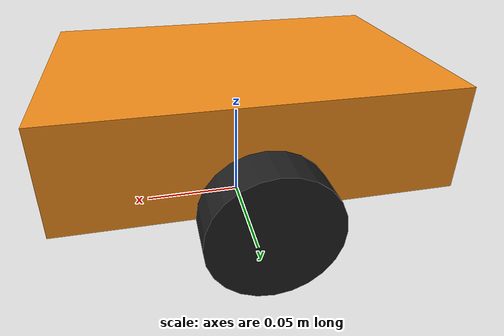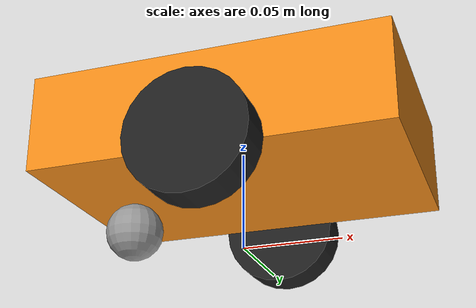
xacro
<?xml version="1.0"?>
<robot name="simple_duckiebot" xmlns:xacro="http://www.ros.org/wiki/xacro">

  <xacro:include filename="$(find duckiebot_description)/urdf/materials.xacro"/>

  <xacro:property name="half_turn" value="1.5707963267948966"/>
  <xacro:property name="chassis_length" value="0.18"/>
  <xacro:property name="chassis_width" value="0.12"/>
  <xacro:property name="chassis_height" value="0.05"/>
  <xacro:property name="chassis_mass" value="1.0"/>
  <xacro:property name="wheel_radius" value="0.03"/>
  <xacro:property name="wheel_width" value="0.02"/>
  <xacro:property name="wheel_mass" value="0.15"/>
  <xacro:property name="wheel_offset_x" value="0.0"/>
  <xacro:property name="wheel_offset_y" value="0.07"/>
  <xacro:property name="caster_radius" value="0.015"/>
  <xacro:property name="caster_mass" value="0.05"/>
  <xacro:property name="caster_offset_x" value="-0.06"/>

  <link name="base_link"/>

  <link name="chassis">
    <inertial>
      <origin xyz="0 0 0"/>
      <mass value="${chassis_mass}"/>
      <inertia ixx="0.002" ixy="0" ixz="0" iyy="0.004" iyz="0" izz="0.005"/>
    </inertial>
    <visual>
      <origin xyz="0 0 ${wheel_radius + chassis_height / 2.0}"/>
      <geometry>
        <box size="${chassis_length} ${chassis_width} ${chassis_height}"/>
      </geometry>
      <material name="orange"/>
    </visual>
    <collision>
      <origin xyz="0 0 ${wheel_radius + chassis_height / 2.0}"/>
      <geometry>
        <box size="${chassis_length} ${chassis_width} ${chassis_height}"/>
      </geometry>
    </collision>
  </link>

  <joint name="base_to_chassis" type="fixed">
    <parent link="base_link"/>
    <child link="chassis"/>
    <origin xyz="0 0 0" rpy="0 0 0"/>
  </joint>

  <link name="left_wheel">
    <inertial>
      <origin xyz="0 0 0"/>
      <mass value="${wheel_mass}"/>
      <inertia ixx="5e-5" ixy="0" ixz="0" iyy="5e-5" iyz="0" izz="8e-5"/>
    </inertial>
    <visual>
      <origin xyz="0 0 0" rpy="${half_turn} 0 0"/>
      <geometry>
        <cylinder radius="${wheel_radius}" length="${wheel_width}"/>
      </geometry>
      <material name="black"/>
    </visual>
    <collision>
      <origin xyz="0 0 0" rpy="${half_turn} 0 0"/>
      <geometry>
        <cylinder radius="${wheel_radius}" length="${wheel_width}"/>
      </geometry>
    </collision>
  </link>

  <joint name="left_wheel_hinge" type="continuous">
    <parent link="chassis"/>
    <child link="left_wheel"/>
    <origin xyz="${wheel_offset_x} ${wheel_offset_y} ${wheel_radius}" rpy="0 0 0"/>
    <axis xyz="0 1 0"/>
  </joint>

  <link name="right_wheel">
    <inertial>
      <origin xyz="0 0 0"/>
      <mass value="${wheel_mass}"/>
      <inertia ixx="5e-5" ixy="0" ixz="0" iyy="5e-5" iyz="0" izz="8e-5"/>
    </inertial>
    <visual>
      <origin xyz="0 0 0" rpy="${half_turn} 0 0"/>
      <geometry>
        <cylinder radius="${wheel_radius}" length="${wheel_width}"/>
      </geometry>
      <material name="black"/>
    </visual>
    <collision>
      <origin xyz="0 0 0" rpy="${half_turn} 0 0"/>
      <geometry>
        <cylinder radius="${wheel_radius}" length="${wheel_width}"/>
      </geometry>
    </collision>
  </link>

  <joint name="right_wheel_hinge" type="continuous">
    <parent link="chassis"/>
    <child link="right_wheel"/>
    <origin xyz="${wheel_offset_x} ${-wheel_offset_y} ${wheel_radius}" rpy="0 0 0"/>
    <axis xyz="0 1 0"/>
  </joint>

  <link name="caster">
    <inertial>
      <origin xyz="0 0 0"/>
      <mass value="${caster_mass}"/>
      <inertia ixx="1e-5" ixy="0" ixz="0" iyy="1e-5" iyz="0" izz="1e-5"/>
    </inertial>
    <visual>
      <origin xyz="0 0 0"/>
      <geometry>
        <sphere radius="${caster_radius}"/>
      </geometry>
      <material name="grey"/>
    </visual>
    <collision>
      <origin xyz="0 0 0"/>
      <geometry>
        <sphere radius="${caster_radius}"/>
      </geometry>
    </collision>
  </link>

  <joint name="caster_joint" type="fixed">
    <parent link="chassis"/>
    <child link="caster"/>
    <origin xyz="${caster_offset_x} 0 ${caster_radius}" rpy="0 0 0"/>
  </joint>

  <gazebo>
    <plugin name="simple_diff_drive" filename="libgazebo_ros_diff_drive.so">
      <update_rate>50</update_rate>
      <left_joint>left_wheel_hinge</left_joint>
      <right_joint>right_wheel_hinge</right_joint>
      <wheel_separation>${2.0 * wheel_offset_y}</wheel_separation>
      <wheel_diameter>${2.0 * wheel_radius}</wheel_diameter>
      <max_wheel_torque>10.0</max_wheel_torque>
      <max_wheel_acceleration>5.0</max_wheel_acceleration>
      <command_topic>cmd_vel</command_topic>
      <odometry_topic>odom</odometry_topic>
      <odometry_frame>odom</odometry_frame>
      <robot_base_frame>base_link</robot_base_frame>
      <publish_odom>true</publish_odom>
      <publish_odom_tf>true</publish_odom_tf>
      <publish_wheel_tf>false</publish_wheel_tf>
    </plugin>
  </gazebo>

  <gazebo reference="chassis">
    <material>Gazebo/Orange</material>
  </gazebo>

  <gazebo reference="left_wheel">
    <mu1>1.0</mu1>
    <mu2>1.0</mu2>
    <material>Gazebo/Black</material>
  </gazebo>

  <gazebo reference="right_wheel">
    <mu1>1.0</mu1>
    <mu2>1.0</mu2>
    <material>Gazebo/Black</material>
  </gazebo>

  <gazebo reference="caster">
    <material>Gazebo/Grey</material>
  </gazebo>

</robot>
